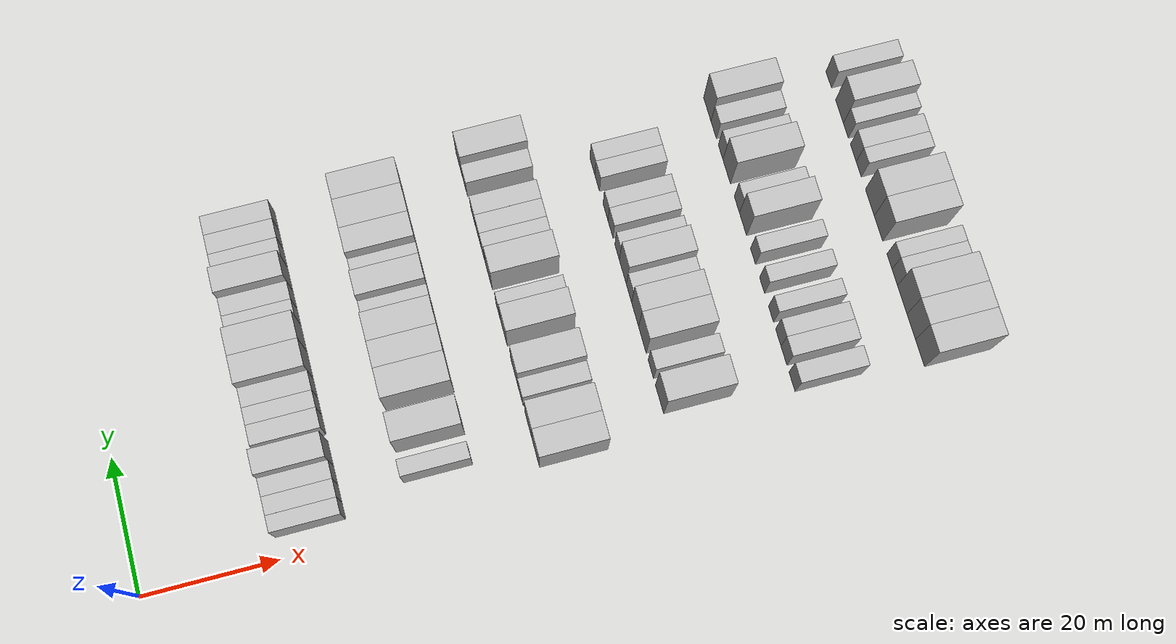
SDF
<sdf version="1.6">
 <world name="default">
  <model name="building_94">
   <static>1</static>
   <pose>25.0000 4.3334 0 0.000000 0.000000 0.000000</pose>
   <link name="link">
    <pose>0 0 3.00 0 0 0</pose>
    <collision name="collision"><geometry><box><size>10.0000 2.4107 6.0000</size></box></geometry></collision>
    <visual name="visual">
     <cast_shadows>0</cast_shadows>
     <geometry><box><size>10.0000 2.4107 6.0000</size></box></geometry>
     <material>
      <script>
       <uri>model://HANNAS_wall/materials/scripts</uri>
       <uri>model://HANNAS_wall/materials/textures</uri>
       <name>vrc/HANNAS_wall</name>
      </script>
     </material>
    </visual>
   </link>
  </model>
  <model name="building_95">
   <static>1</static>
   <pose>25.0000 6.8587 0 0.000000 0.000000 0.000000</pose>
   <link name="link">
    <pose>0 0 3.00 0 0 0</pose>
    <collision name="collision"><geometry><box><size>10.0000 2.6398 6.0000</size></box></geometry></collision>
    <visual name="visual">
     <cast_shadows>0</cast_shadows>
     <geometry><box><size>10.0000 2.6398 6.0000</size></box></geometry>
     <material>
      <script>
       <uri>model://HANNAS_wall/materials/scripts</uri>
       <uri>model://HANNAS_wall/materials/textures</uri>
       <name>vrc/HANNAS_wall</name>
      </script>
     </material>
    </visual>
   </link>
  </model>
  <model name="building_96">
   <static>1</static>
   <pose>25.0000 9.5032 0 0.000000 0.000000 0.000000</pose>
   <link name="link">
    <pose>0 0 3.00 0 0 0</pose>
    <collision name="collision"><geometry><box><size>10.0000 2.6491 6.0000</size></box></geometry></collision>
    <visual name="visual">
     <cast_shadows>0</cast_shadows>
     <geometry><box><size>10.0000 2.6491 6.0000</size></box></geometry>
     <material>
      <script>
       <uri>model://HANNAS_wall/materials/scripts</uri>
       <uri>model://HANNAS_wall/materials/textures</uri>
       <name>vrc/HANNAS_wall</name>
      </script>
     </material>
    </visual>
   </link>
  </model>
  <model name="building_97">
   <static>1</static>
   <pose>25.0000 12.6400 0 0.000000 0.000000 0.000000</pose>
   <link name="link">
    <pose>0 0 4.50 0 0 0</pose>
    <collision name="collision"><geometry><box><size>10.0000 3.6245 9.0000</size></box></geometry></collision>
    <visual name="visual">
     <cast_shadows>0</cast_shadows>
     <geometry><box><size>10.0000 3.6245 9.0000</size></box></geometry>
     <material>
      <script>
       <uri>model://HANNAS_wall/materials/scripts</uri>
       <uri>model://HANNAS_wall/materials/textures</uri>
       <name>vrc/HANNAS_wall</name>
      </script>
     </material>
    </visual>
   </link>
  </model>
  <model name="building_98">
   <static>1</static>
   <pose>25.0000 16.9301 0 0.000000 0.000000 0.000000</pose>
   <link name="link">
    <pose>0 0 3.00 0 0 0</pose>
    <collision name="collision"><geometry><box><size>10.0000 2.9557 6.0000</size></box></geometry></collision>
    <visual name="visual">
     <cast_shadows>0</cast_shadows>
     <geometry><box><size>10.0000 2.9557 6.0000</size></box></geometry>
     <material>
      <script>
       <uri>model://HANNAS_wall/materials/scripts</uri>
       <uri>model://HANNAS_wall/materials/textures</uri>
       <name>vrc/HANNAS_wall</name>
      </script>
     </material>
    </visual>
   </link>
  </model>
  <model name="building_99">
   <static>1</static>
   <pose>25.0000 19.6763 0 0.000000 0.000000 0.000000</pose>
   <link name="link">
    <pose>0 0 3.00 0 0 0</pose>
    <collision name="collision"><geometry><box><size>10.0000 2.5366 6.0000</size></box></geometry></collision>
    <visual name="visual">
     <cast_shadows>0</cast_shadows>
     <geometry><box><size>10.0000 2.5366 6.0000</size></box></geometry>
     <material>
      <script>
       <uri>model://HANNAS_wall/materials/scripts</uri>
       <uri>model://HANNAS_wall/materials/textures</uri>
       <name>vrc/HANNAS_wall</name>
      </script>
     </material>
    </visual>
   </link>
  </model>
  <model name="building_100">
   <static>1</static>
   <pose>25.0000 22.3847 0 0.000000 0.000000 0.000000</pose>
   <link name="link">
    <pose>0 0 3.00 0 0 0</pose>
    <collision name="collision"><geometry><box><size>10.0000 2.8801 6.0000</size></box></geometry></collision>
    <visual name="visual">
     <cast_shadows>0</cast_shadows>
     <geometry><box><size>10.0000 2.8801 6.0000</size></box></geometry>
     <material>
      <script>
       <uri>model://HANNAS_wall/materials/scripts</uri>
       <uri>model://HANNAS_wall/materials/textures</uri>
       <name>vrc/HANNAS_wall</name>
      </script>
     </material>
    </visual>
   </link>
  </model>
  <model name="building_101">
   <static>1</static>
   <pose>25.0000 25.8554 0 0.000000 0.000000 0.000000</pose>
   <link name="link">
    <pose>0 0 4.50 0 0 0</pose>
    <collision name="collision"><geometry><box><size>10.0000 4.0614 9.0000</size></box></geometry></collision>
    <visual name="visual">
     <cast_shadows>0</cast_shadows>
     <geometry><box><size>10.0000 4.0614 9.0000</size></box></geometry>
     <material>
      <script>
       <uri>model://HANNAS_wall/materials/scripts</uri>
       <uri>model://HANNAS_wall/materials/textures</uri>
       <name>vrc/HANNAS_wall</name>
      </script>
     </material>
    </visual>
   </link>
  </model>
  <model name="building_102">
   <static>1</static>
   <pose>25.0000 29.9325 0 0.000000 0.000000 0.000000</pose>
   <link name="link">
    <pose>0 0 4.50 0 0 0</pose>
    <collision name="collision"><geometry><box><size>10.0000 4.0927 9.0000</size></box></geometry></collision>
    <visual name="visual">
     <cast_shadows>0</cast_shadows>
     <geometry><box><size>10.0000 4.0927 9.0000</size></box></geometry>
     <material>
      <script>
       <uri>model://HANNAS_wall/materials/scripts</uri>
       <uri>model://HANNAS_wall/materials/textures</uri>
       <name>vrc/HANNAS_wall</name>
      </script>
     </material>
    </visual>
   </link>
  </model>
  <model name="building_103">
   <static>1</static>
   <pose>25.0000 33.2181 0 0.000000 0.000000 0.000000</pose>
   <link name="link">
    <pose>0 0 3.00 0 0 0</pose>
    <collision name="collision"><geometry><box><size>10.0000 2.4785 6.0000</size></box></geometry></collision>
    <visual name="visual">
     <cast_shadows>0</cast_shadows>
     <geometry><box><size>10.0000 2.4785 6.0000</size></box></geometry>
     <material>
      <script>
       <uri>model://HANNAS_wall/materials/scripts</uri>
       <uri>model://HANNAS_wall/materials/textures</uri>
       <name>vrc/HANNAS_wall</name>
      </script>
     </material>
    </visual>
   </link>
  </model>
  <model name="building_104">
   <static>1</static>
   <pose>25.0000 35.8272 0 0.000000 0.000000 0.000000</pose>
   <link name="link">
    <pose>0 0 3.00 0 0 0</pose>
    <collision name="collision"><geometry><box><size>10.0000 2.7397 6.0000</size></box></geometry></collision>
    <visual name="visual">
     <cast_shadows>0</cast_shadows>
     <geometry><box><size>10.0000 2.7397 6.0000</size></box></geometry>
     <material>
      <script>
       <uri>model://HANNAS_wall/materials/scripts</uri>
       <uri>model://HANNAS_wall/materials/textures</uri>
       <name>vrc/HANNAS_wall</name>
      </script>
     </material>
    </visual>
   </link>
  </model>
  <model name="building_105">
   <static>1</static>
   <pose>25.0000 39.0644 0 0.000000 0.000000 0.000000</pose>
   <link name="link">
    <pose>0 0 4.50 0 0 0</pose>
    <collision name="collision"><geometry><box><size>10.0000 3.7347 9.0000</size></box></geometry></collision>
    <visual name="visual">
     <cast_shadows>0</cast_shadows>
     <geometry><box><size>10.0000 3.7347 9.0000</size></box></geometry>
     <material>
      <script>
       <uri>model://HANNAS_wall/materials/scripts</uri>
       <uri>model://HANNAS_wall/materials/textures</uri>
       <name>vrc/HANNAS_wall</name>
      </script>
     </material>
    </visual>
   </link>
  </model>
  <model name="building_106">
   <static>1</static>
   <pose>25.0000 42.3756 0 0.000000 0.000000 0.000000</pose>
   <link name="link">
    <pose>0 0 3.00 0 0 0</pose>
    <collision name="collision"><geometry><box><size>10.0000 2.8877 6.0000</size></box></geometry></collision>
    <visual name="visual">
     <cast_shadows>0</cast_shadows>
     <geometry><box><size>10.0000 2.8877 6.0000</size></box></geometry>
     <material>
      <script>
       <uri>model://HANNAS_wall/materials/scripts</uri>
       <uri>model://HANNAS_wall/materials/textures</uri>
       <name>vrc/HANNAS_wall</name>
      </script>
     </material>
    </visual>
   </link>
  </model>
  <model name="building_107">
   <static>1</static>
   <pose>25.0000 45.2879 0 0.000000 0.000000 0.000000</pose>
   <link name="link">
    <pose>0 0 3.00 0 0 0</pose>
    <collision name="collision"><geometry><box><size>10.0000 2.9370 6.0000</size></box></geometry></collision>
    <visual name="visual">
     <cast_shadows>0</cast_shadows>
     <geometry><box><size>10.0000 2.9370 6.0000</size></box></geometry>
     <material>
      <script>
       <uri>model://HANNAS_wall/materials/scripts</uri>
       <uri>model://HANNAS_wall/materials/textures</uri>
       <name>vrc/HANNAS_wall</name>
      </script>
     </material>
    </visual>
   </link>
  </model>
  <model name="building_108">
   <static>1</static>
   <pose>25.0000 48.2164 0 0.000000 0.000000 0.000000</pose>
   <link name="link">
    <pose>0 0 3.00 0 0 0</pose>
    <collision name="collision"><geometry><box><size>10.0000 2.9199 6.0000</size></box></geometry></collision>
    <visual name="visual">
     <cast_shadows>0</cast_shadows>
     <geometry><box><size>10.0000 2.9199 6.0000</size></box></geometry>
     <material>
      <script>
       <uri>model://HANNAS_wall/materials/scripts</uri>
       <uri>model://HANNAS_wall/materials/textures</uri>
       <name>vrc/HANNAS_wall</name>
      </script>
     </material>
    </visual>
   </link>
  </model>
  <model name="building_274">
   <static>1</static>
   <pose>44.0000 7.2177 0 0.000000 0.000000 0.000000</pose>
   <link name="link">
    <pose>0 0 3.00 0 0 0</pose>
    <collision name="collision"><geometry><box><size>10.0000 2.4488 6.0000</size></box></geometry></collision>
    <visual name="visual">
     <cast_shadows>0</cast_shadows>
     <geometry><box><size>10.0000 2.4488 6.0000</size></box></geometry>
     <material>
      <script>
       <uri>model://HANNAS_wall/materials/scripts</uri>
       <uri>model://HANNAS_wall/materials/textures</uri>
       <name>vrc/HANNAS_wall</name>
      </script>
     </material>
    </visual>
   </link>
  </model>
  <model name="building_275">
   <static>1</static>
   <pose>44.0000 12.5557 0 0.000000 0.000000 0.000000</pose>
   <link name="link">
    <pose>0 0 4.50 0 0 0</pose>
    <collision name="collision"><geometry><box><size>10.0000 4.2271 9.0000</size></box></geometry></collision>
    <visual name="visual">
     <cast_shadows>0</cast_shadows>
     <geometry><box><size>10.0000 4.2271 9.0000</size></box></geometry>
     <material>
      <script>
       <uri>model://HANNAS_wall/materials/scripts</uri>
       <uri>model://HANNAS_wall/materials/textures</uri>
       <name>vrc/HANNAS_wall</name>
      </script>
     </material>
    </visual>
   </link>
  </model>
  <model name="building_276">
   <static>1</static>
   <pose>44.0000 18.8614 0 0.000000 0.000000 0.000000</pose>
   <link name="link">
    <pose>0 0 4.50 0 0 0</pose>
    <collision name="collision"><geometry><box><size>10.0000 4.3844 9.0000</size></box></geometry></collision>
    <visual name="visual">
     <cast_shadows>0</cast_shadows>
     <geometry><box><size>10.0000 4.3844 9.0000</size></box></geometry>
     <material>
      <script>
       <uri>model://HANNAS_wall/materials/scripts</uri>
       <uri>model://HANNAS_wall/materials/textures</uri>
       <name>vrc/HANNAS_wall</name>
      </script>
     </material>
    </visual>
   </link>
  </model>
  <model name="building_277">
   <static>1</static>
   <pose>44.0000 23.0179 0 0.000000 0.000000 0.000000</pose>
   <link name="link">
    <pose>0 0 4.50 0 0 0</pose>
    <collision name="collision"><geometry><box><size>10.0000 3.9285 9.0000</size></box></geometry></collision>
    <visual name="visual">
     <cast_shadows>0</cast_shadows>
     <geometry><box><size>10.0000 3.9285 9.0000</size></box></geometry>
     <material>
      <script>
       <uri>model://HANNAS_wall/materials/scripts</uri>
       <uri>model://HANNAS_wall/materials/textures</uri>
       <name>vrc/HANNAS_wall</name>
      </script>
     </material>
    </visual>
   </link>
  </model>
  <model name="building_278">
   <static>1</static>
   <pose>44.0000 27.0907 0 0.000000 0.000000 0.000000</pose>
   <link name="link">
    <pose>0 0 4.50 0 0 0</pose>
    <collision name="collision"><geometry><box><size>10.0000 4.2170 9.0000</size></box></geometry></collision>
    <visual name="visual">
     <cast_shadows>0</cast_shadows>
     <geometry><box><size>10.0000 4.2170 9.0000</size></box></geometry>
     <material>
      <script>
       <uri>model://HANNAS_wall/materials/scripts</uri>
       <uri>model://HANNAS_wall/materials/textures</uri>
       <name>vrc/HANNAS_wall</name>
      </script>
     </material>
    </visual>
   </link>
  </model>
  <model name="building_279">
   <static>1</static>
   <pose>44.0000 30.4544 0 0.000000 0.000000 0.000000</pose>
   <link name="link">
    <pose>0 0 3.00 0 0 0</pose>
    <collision name="collision"><geometry><box><size>10.0000 2.5103 6.0000</size></box></geometry></collision>
    <visual name="visual">
     <cast_shadows>0</cast_shadows>
     <geometry><box><size>10.0000 2.5103 6.0000</size></box></geometry>
     <material>
      <script>
       <uri>model://HANNAS_wall/materials/scripts</uri>
       <uri>model://HANNAS_wall/materials/textures</uri>
       <name>vrc/HANNAS_wall</name>
      </script>
     </material>
    </visual>
   </link>
  </model>
  <model name="building_280">
   <static>1</static>
   <pose>44.0000 33.5861 0 0.000000 0.000000 0.000000</pose>
   <link name="link">
    <pose>0 0 4.50 0 0 0</pose>
    <collision name="collision"><geometry><box><size>10.0000 3.7531 9.0000</size></box></geometry></collision>
    <visual name="visual">
     <cast_shadows>0</cast_shadows>
     <geometry><box><size>10.0000 3.7531 9.0000</size></box></geometry>
     <material>
      <script>
       <uri>model://HANNAS_wall/materials/scripts</uri>
       <uri>model://HANNAS_wall/materials/textures</uri>
       <name>vrc/HANNAS_wall</name>
      </script>
     </material>
    </visual>
   </link>
  </model>
  <model name="building_281">
   <static>1</static>
   <pose>44.0000 36.7830 0 0.000000 0.000000 0.000000</pose>
   <link name="link">
    <pose>0 0 3.00 0 0 0</pose>
    <collision name="collision"><geometry><box><size>10.0000 2.6407 6.0000</size></box></geometry></collision>
    <visual name="visual">
     <cast_shadows>0</cast_shadows>
     <geometry><box><size>10.0000 2.6407 6.0000</size></box></geometry>
     <material>
      <script>
       <uri>model://HANNAS_wall/materials/scripts</uri>
       <uri>model://HANNAS_wall/materials/textures</uri>
       <name>vrc/HANNAS_wall</name>
      </script>
     </material>
    </visual>
   </link>
  </model>
  <model name="building_282">
   <static>1</static>
   <pose>44.0000 39.9906 0 0.000000 0.000000 0.000000</pose>
   <link name="link">
    <pose>0 0 4.50 0 0 0</pose>
    <collision name="collision"><geometry><box><size>10.0000 3.7746 9.0000</size></box></geometry></collision>
    <visual name="visual">
     <cast_shadows>0</cast_shadows>
     <geometry><box><size>10.0000 3.7746 9.0000</size></box></geometry>
     <material>
      <script>
       <uri>model://HANNAS_wall/materials/scripts</uri>
       <uri>model://HANNAS_wall/materials/textures</uri>
       <name>vrc/HANNAS_wall</name>
      </script>
     </material>
    </visual>
   </link>
  </model>
  <model name="building_283">
   <static>1</static>
   <pose>44.0000 44.0481 0 0.000000 0.000000 0.000000</pose>
   <link name="link">
    <pose>0 0 4.50 0 0 0</pose>
    <collision name="collision"><geometry><box><size>10.0000 4.3403 9.0000</size></box></geometry></collision>
    <visual name="visual">
     <cast_shadows>0</cast_shadows>
     <geometry><box><size>10.0000 4.3403 9.0000</size></box></geometry>
     <material>
      <script>
       <uri>model://HANNAS_wall/materials/scripts</uri>
       <uri>model://HANNAS_wall/materials/textures</uri>
       <name>vrc/HANNAS_wall</name>
      </script>
     </material>
    </visual>
   </link>
  </model>
  <model name="building_284">
   <static>1</static>
   <pose>44.0000 48.2160 0 0.000000 0.000000 0.000000</pose>
   <link name="link">
    <pose>0 0 4.50 0 0 0</pose>
    <collision name="collision"><geometry><box><size>10.0000 3.9956 9.0000</size></box></geometry></collision>
    <visual name="visual">
     <cast_shadows>0</cast_shadows>
     <geometry><box><size>10.0000 3.9956 9.0000</size></box></geometry>
     <material>
      <script>
       <uri>model://HANNAS_wall/materials/scripts</uri>
       <uri>model://HANNAS_wall/materials/textures</uri>
       <name>vrc/HANNAS_wall</name>
      </script>
     </material>
    </visual>
   </link>
  </model>
  <model name="building_437">
   <static>1</static>
   <pose>63.0000 5.2274 0 0.000000 0.000000 0.000000</pose>
   <link name="link">
    <pose>0 0 4.50 0 0 0</pose>
    <collision name="collision"><geometry><box><size>10.0000 4.0675 9.0000</size></box></geometry></collision>
    <visual name="visual">
     <cast_shadows>0</cast_shadows>
     <geometry><box><size>10.0000 4.0675 9.0000</size></box></geometry>
     <material>
      <script>
       <uri>model://HANNAS_wall/materials/scripts</uri>
       <uri>model://HANNAS_wall/materials/textures</uri>
       <name>vrc/HANNAS_wall</name>
      </script>
     </material>
    </visual>
   </link>
  </model>
  <model name="building_438">
   <static>1</static>
   <pose>63.0000 9.2887 0 0.000000 0.000000 0.000000</pose>
   <link name="link">
    <pose>0 0 4.50 0 0 0</pose>
    <collision name="collision"><geometry><box><size>10.0000 4.0551 9.0000</size></box></geometry></collision>
    <visual name="visual">
     <cast_shadows>0</cast_shadows>
     <geometry><box><size>10.0000 4.0551 9.0000</size></box></geometry>
     <material>
      <script>
       <uri>model://HANNAS_wall/materials/scripts</uri>
       <uri>model://HANNAS_wall/materials/textures</uri>
       <name>vrc/HANNAS_wall</name>
      </script>
     </material>
    </visual>
   </link>
  </model>
  <model name="building_439">
   <static>1</static>
   <pose>63.0000 13.7377 0 0.000000 0.000000 0.000000</pose>
   <link name="link">
    <pose>0 0 3.00 0 0 0</pose>
    <collision name="collision"><geometry><box><size>10.0000 2.8430 6.0000</size></box></geometry></collision>
    <visual name="visual">
     <cast_shadows>0</cast_shadows>
     <geometry><box><size>10.0000 2.8430 6.0000</size></box></geometry>
     <material>
      <script>
       <uri>model://HANNAS_wall/materials/scripts</uri>
       <uri>model://HANNAS_wall/materials/textures</uri>
       <name>vrc/HANNAS_wall</name>
      </script>
     </material>
    </visual>
   </link>
  </model>
  <model name="building_440">
   <static>1</static>
   <pose>63.0000 17.2520 0 0.000000 0.000000 0.000000</pose>
   <link name="link">
    <pose>0 0 4.50 0 0 0</pose>
    <collision name="collision"><geometry><box><size>10.0000 4.1856 9.0000</size></box></geometry></collision>
    <visual name="visual">
     <cast_shadows>0</cast_shadows>
     <geometry><box><size>10.0000 4.1856 9.0000</size></box></geometry>
     <material>
      <script>
       <uri>model://HANNAS_wall/materials/scripts</uri>
       <uri>model://HANNAS_wall/materials/textures</uri>
       <name>vrc/HANNAS_wall</name>
      </script>
     </material>
    </visual>
   </link>
  </model>
  <model name="building_441">
   <static>1</static>
   <pose>63.0000 23.3477 0 0.000000 0.000000 0.000000</pose>
   <link name="link">
    <pose>0 0 4.50 0 0 0</pose>
    <collision name="collision"><geometry><box><size>10.0000 4.0058 9.0000</size></box></geometry></collision>
    <visual name="visual">
     <cast_shadows>0</cast_shadows>
     <geometry><box><size>10.0000 4.0058 9.0000</size></box></geometry>
     <material>
      <script>
       <uri>model://HANNAS_wall/materials/scripts</uri>
       <uri>model://HANNAS_wall/materials/textures</uri>
       <name>vrc/HANNAS_wall</name>
      </script>
     </material>
    </visual>
   </link>
  </model>
  <model name="building_442">
   <static>1</static>
   <pose>63.0000 26.6752 0 0.000000 0.000000 0.000000</pose>
   <link name="link">
    <pose>0 0 3.00 0 0 0</pose>
    <collision name="collision"><geometry><box><size>10.0000 2.6492 6.0000</size></box></geometry></collision>
    <visual name="visual">
     <cast_shadows>0</cast_shadows>
     <geometry><box><size>10.0000 2.6492 6.0000</size></box></geometry>
     <material>
      <script>
       <uri>model://HANNAS_wall/materials/scripts</uri>
       <uri>model://HANNAS_wall/materials/textures</uri>
       <name>vrc/HANNAS_wall</name>
      </script>
     </material>
    </visual>
   </link>
  </model>
  <model name="building_443">
   <static>1</static>
   <pose>63.0000 31.9943 0 0.000000 0.000000 0.000000</pose>
   <link name="link">
    <pose>0 0 4.50 0 0 0</pose>
    <collision name="collision"><geometry><box><size>10.0000 3.9889 9.0000</size></box></geometry></collision>
    <visual name="visual">
     <cast_shadows>0</cast_shadows>
     <geometry><box><size>10.0000 3.9889 9.0000</size></box></geometry>
     <material>
      <script>
       <uri>model://HANNAS_wall/materials/scripts</uri>
       <uri>model://HANNAS_wall/materials/textures</uri>
       <name>vrc/HANNAS_wall</name>
      </script>
     </material>
    </visual>
   </link>
  </model>
  <model name="building_444">
   <static>1</static>
   <pose>63.0000 35.4839 0 0.000000 0.000000 0.000000</pose>
   <link name="link">
    <pose>0 0 3.00 0 0 0</pose>
    <collision name="collision"><geometry><box><size>10.0000 2.9904 6.0000</size></box></geometry></collision>
    <visual name="visual">
     <cast_shadows>0</cast_shadows>
     <geometry><box><size>10.0000 2.9904 6.0000</size></box></geometry>
     <material>
      <script>
       <uri>model://HANNAS_wall/materials/scripts</uri>
       <uri>model://HANNAS_wall/materials/textures</uri>
       <name>vrc/HANNAS_wall</name>
      </script>
     </material>
    </visual>
   </link>
  </model>
  <model name="building_445">
   <static>1</static>
   <pose>63.0000 38.3937 0 0.000000 0.000000 0.000000</pose>
   <link name="link">
    <pose>0 0 3.00 0 0 0</pose>
    <collision name="collision"><geometry><box><size>10.0000 2.8292 6.0000</size></box></geometry></collision>
    <visual name="visual">
     <cast_shadows>0</cast_shadows>
     <geometry><box><size>10.0000 2.8292 6.0000</size></box></geometry>
     <material>
      <script>
       <uri>model://HANNAS_wall/materials/scripts</uri>
       <uri>model://HANNAS_wall/materials/textures</uri>
       <name>vrc/HANNAS_wall</name>
      </script>
     </material>
    </visual>
   </link>
  </model>
  <model name="building_446">
   <static>1</static>
   <pose>63.0000 41.2841 0 0.000000 0.000000 0.000000</pose>
   <link name="link">
    <pose>0 0 3.00 0 0 0</pose>
    <collision name="collision"><geometry><box><size>10.0000 2.9515 6.0000</size></box></geometry></collision>
    <visual name="visual">
     <cast_shadows>0</cast_shadows>
     <geometry><box><size>10.0000 2.9515 6.0000</size></box></geometry>
     <material>
      <script>
       <uri>model://HANNAS_wall/materials/scripts</uri>
       <uri>model://HANNAS_wall/materials/textures</uri>
       <name>vrc/HANNAS_wall</name>
      </script>
     </material>
    </visual>
   </link>
  </model>
  <model name="building_447">
   <static>1</static>
   <pose>63.0000 46.2151 0 0.000000 0.000000 0.000000</pose>
   <link name="link">
    <pose>0 0 3.00 0 0 0</pose>
    <collision name="collision"><geometry><box><size>10.0000 2.9103 6.0000</size></box></geometry></collision>
    <visual name="visual">
     <cast_shadows>0</cast_shadows>
     <geometry><box><size>10.0000 2.9103 6.0000</size></box></geometry>
     <material>
      <script>
       <uri>model://HANNAS_wall/materials/scripts</uri>
       <uri>model://HANNAS_wall/materials/textures</uri>
       <name>vrc/HANNAS_wall</name>
      </script>
     </material>
    </visual>
   </link>
  </model>
  <model name="building_448">
   <static>1</static>
   <pose>63.0000 49.6819 0 0.000000 0.000000 0.000000</pose>
   <link name="link">
    <pose>0 0 4.50 0 0 0</pose>
    <collision name="collision"><geometry><box><size>10.0000 4.0234 9.0000</size></box></geometry></collision>
    <visual name="visual">
     <cast_shadows>0</cast_shadows>
     <geometry><box><size>10.0000 4.0234 9.0000</size></box></geometry>
     <material>
      <script>
       <uri>model://HANNAS_wall/materials/scripts</uri>
       <uri>model://HANNAS_wall/materials/textures</uri>
       <name>vrc/HANNAS_wall</name>
      </script>
     </material>
    </visual>
   </link>
  </model>
  <model name="building_608">
   <static>1</static>
   <pose>82.0000 8.2202 0 0.000000 0.000000 0.000000</pose>
   <link name="link">
    <pose>0 0 4.50 0 0 0</pose>
    <collision name="collision"><geometry><box><size>10.0000 4.2672 9.0000</size></box></geometry></collision>
    <visual name="visual">
     <cast_shadows>0</cast_shadows>
     <geometry><box><size>10.0000 4.2672 9.0000</size></box></geometry>
     <material>
      <script>
       <uri>model://HANNAS_wall/materials/scripts</uri>
       <uri>model://HANNAS_wall/materials/textures</uri>
       <name>vrc/HANNAS_wall</name>
      </script>
     </material>
    </visual>
   </link>
  </model>
  <model name="building_609">
   <static>1</static>
   <pose>82.0000 12.7709 0 0.000000 0.000000 0.000000</pose>
   <link name="link">
    <pose>0 0 3.00 0 0 0</pose>
    <collision name="collision"><geometry><box><size>10.0000 2.8343 6.0000</size></box></geometry></collision>
    <visual name="visual">
     <cast_shadows>0</cast_shadows>
     <geometry><box><size>10.0000 2.8343 6.0000</size></box></geometry>
     <material>
      <script>
       <uri>model://HANNAS_wall/materials/scripts</uri>
       <uri>model://HANNAS_wall/materials/textures</uri>
       <name>vrc/HANNAS_wall</name>
      </script>
     </material>
    </visual>
   </link>
  </model>
  <model name="building_610">
   <static>1</static>
   <pose>82.0000 17.2074 0 0.000000 0.000000 0.000000</pose>
   <link name="link">
    <pose>0 0 4.50 0 0 0</pose>
    <collision name="collision"><geometry><box><size>10.0000 4.0388 9.0000</size></box></geometry></collision>
    <visual name="visual">
     <cast_shadows>0</cast_shadows>
     <geometry><box><size>10.0000 4.0388 9.0000</size></box></geometry>
     <material>
      <script>
       <uri>model://HANNAS_wall/materials/scripts</uri>
       <uri>model://HANNAS_wall/materials/textures</uri>
       <name>vrc/HANNAS_wall</name>
      </script>
     </material>
    </visual>
   </link>
  </model>
  <model name="building_611">
   <static>1</static>
   <pose>82.0000 21.0858 0 0.000000 0.000000 0.000000</pose>
   <link name="link">
    <pose>0 0 4.50 0 0 0</pose>
    <collision name="collision"><geometry><box><size>10.0000 3.7180 9.0000</size></box></geometry></collision>
    <visual name="visual">
     <cast_shadows>0</cast_shadows>
     <geometry><box><size>10.0000 3.7180 9.0000</size></box></geometry>
     <material>
      <script>
       <uri>model://HANNAS_wall/materials/scripts</uri>
       <uri>model://HANNAS_wall/materials/textures</uri>
       <name>vrc/HANNAS_wall</name>
      </script>
     </material>
    </visual>
   </link>
  </model>
  <model name="building_612">
   <static>1</static>
   <pose>82.0000 24.3654 0 0.000000 0.000000 0.000000</pose>
   <link name="link">
    <pose>0 0 3.00 0 0 0</pose>
    <collision name="collision"><geometry><box><size>10.0000 2.8411 6.0000</size></box></geometry></collision>
    <visual name="visual">
     <cast_shadows>0</cast_shadows>
     <geometry><box><size>10.0000 2.8411 6.0000</size></box></geometry>
     <material>
      <script>
       <uri>model://HANNAS_wall/materials/scripts</uri>
       <uri>model://HANNAS_wall/materials/textures</uri>
       <name>vrc/HANNAS_wall</name>
      </script>
     </material>
    </visual>
   </link>
  </model>
  <model name="building_613">
   <static>1</static>
   <pose>82.0000 27.7019 0 0.000000 0.000000 0.000000</pose>
   <link name="link">
    <pose>0 0 4.50 0 0 0</pose>
    <collision name="collision"><geometry><box><size>10.0000 3.8319 9.0000</size></box></geometry></collision>
    <visual name="visual">
     <cast_shadows>0</cast_shadows>
     <geometry><box><size>10.0000 3.8319 9.0000</size></box></geometry>
     <material>
      <script>
       <uri>model://HANNAS_wall/materials/scripts</uri>
       <uri>model://HANNAS_wall/materials/textures</uri>
       <name>vrc/HANNAS_wall</name>
      </script>
     </material>
    </visual>
   </link>
  </model>
  <model name="building_614">
   <static>1</static>
   <pose>82.0000 30.8458 0 0.000000 0.000000 0.000000</pose>
   <link name="link">
    <pose>0 0 3.00 0 0 0</pose>
    <collision name="collision"><geometry><box><size>10.0000 2.4558 6.0000</size></box></geometry></collision>
    <visual name="visual">
     <cast_shadows>0</cast_shadows>
     <geometry><box><size>10.0000 2.4558 6.0000</size></box></geometry>
     <material>
      <script>
       <uri>model://HANNAS_wall/materials/scripts</uri>
       <uri>model://HANNAS_wall/materials/textures</uri>
       <name>vrc/HANNAS_wall</name>
      </script>
     </material>
    </visual>
   </link>
  </model>
  <model name="building_615">
   <static>1</static>
   <pose>82.0000 34.4675 0 0.000000 0.000000 0.000000</pose>
   <link name="link">
    <pose>0 0 3.00 0 0 0</pose>
    <collision name="collision"><geometry><box><size>10.0000 2.7876 6.0000</size></box></geometry></collision>
    <visual name="visual">
     <cast_shadows>0</cast_shadows>
     <geometry><box><size>10.0000 2.7876 6.0000</size></box></geometry>
     <material>
      <script>
       <uri>model://HANNAS_wall/materials/scripts</uri>
       <uri>model://HANNAS_wall/materials/textures</uri>
       <name>vrc/HANNAS_wall</name>
      </script>
     </material>
    </visual>
   </link>
  </model>
  <model name="building_616">
   <static>1</static>
   <pose>82.0000 37.1994 0 0.000000 0.000000 0.000000</pose>
   <link name="link">
    <pose>0 0 3.00 0 0 0</pose>
    <collision name="collision"><geometry><box><size>10.0000 2.6762 6.0000</size></box></geometry></collision>
    <visual name="visual">
     <cast_shadows>0</cast_shadows>
     <geometry><box><size>10.0000 2.6762 6.0000</size></box></geometry>
     <material>
      <script>
       <uri>model://HANNAS_wall/materials/scripts</uri>
       <uri>model://HANNAS_wall/materials/textures</uri>
       <name>vrc/HANNAS_wall</name>
      </script>
     </material>
    </visual>
   </link>
  </model>
  <model name="building_617">
   <static>1</static>
   <pose>82.0000 41.8580 0 0.000000 0.000000 0.000000</pose>
   <link name="link">
    <pose>0 0 3.00 0 0 0</pose>
    <collision name="collision"><geometry><box><size>10.0000 2.6410 6.0000</size></box></geometry></collision>
    <visual name="visual">
     <cast_shadows>0</cast_shadows>
     <geometry><box><size>10.0000 2.6410 6.0000</size></box></geometry>
     <material>
      <script>
       <uri>model://HANNAS_wall/materials/scripts</uri>
       <uri>model://HANNAS_wall/materials/textures</uri>
       <name>vrc/HANNAS_wall</name>
      </script>
     </material>
    </visual>
   </link>
  </model>
  <model name="building_618">
   <static>1</static>
   <pose>82.0000 44.5464 0 0.000000 0.000000 0.000000</pose>
   <link name="link">
    <pose>0 0 3.00 0 0 0</pose>
    <collision name="collision"><geometry><box><size>10.0000 2.7358 6.0000</size></box></geometry></collision>
    <visual name="visual">
     <cast_shadows>0</cast_shadows>
     <geometry><box><size>10.0000 2.7358 6.0000</size></box></geometry>
     <material>
      <script>
       <uri>model://HANNAS_wall/materials/scripts</uri>
       <uri>model://HANNAS_wall/materials/textures</uri>
       <name>vrc/HANNAS_wall</name>
      </script>
     </material>
    </visual>
   </link>
  </model>
  <model name="building_783">
   <static>1</static>
   <pose>101.0000 5.8232 0 0.000000 0.000000 0.000000</pose>
   <link name="link">
    <pose>0 0 3.00 0 0 0</pose>
    <collision name="collision"><geometry><box><size>10.0000 2.9668 6.0000</size></box></geometry></collision>
    <visual name="visual">
     <cast_shadows>0</cast_shadows>
     <geometry><box><size>10.0000 2.9668 6.0000</size></box></geometry>
     <material>
      <script>
       <uri>model://HANNAS_wall/materials/scripts</uri>
       <uri>model://HANNAS_wall/materials/textures</uri>
       <name>vrc/HANNAS_wall</name>
      </script>
     </material>
    </visual>
   </link>
  </model>
  <model name="building_784">
   <static>1</static>
   <pose>101.0000 9.7664 0 0.000000 0.000000 0.000000</pose>
   <link name="link">
    <pose>0 0 3.00 0 0 0</pose>
    <collision name="collision"><geometry><box><size>10.0000 2.9196 6.0000</size></box></geometry></collision>
    <visual name="visual">
     <cast_shadows>0</cast_shadows>
     <geometry><box><size>10.0000 2.9196 6.0000</size></box></geometry>
     <material>
      <script>
       <uri>model://HANNAS_wall/materials/scripts</uri>
       <uri>model://HANNAS_wall/materials/textures</uri>
       <name>vrc/HANNAS_wall</name>
      </script>
     </material>
    </visual>
   </link>
  </model>
  <model name="building_785">
   <static>1</static>
   <pose>101.0000 12.5554 0 0.000000 0.000000 0.000000</pose>
   <link name="link">
    <pose>0 0 3.00 0 0 0</pose>
    <collision name="collision"><geometry><box><size>10.0000 2.6585 6.0000</size></box></geometry></collision>
    <visual name="visual">
     <cast_shadows>0</cast_shadows>
     <geometry><box><size>10.0000 2.6585 6.0000</size></box></geometry>
     <material>
      <script>
       <uri>model://HANNAS_wall/materials/scripts</uri>
       <uri>model://HANNAS_wall/materials/textures</uri>
       <name>vrc/HANNAS_wall</name>
      </script>
     </material>
    </visual>
   </link>
  </model>
  <model name="building_786">
   <static>1</static>
   <pose>101.0000 16.1260 0 0.000000 0.000000 0.000000</pose>
   <link name="link">
    <pose>0 0 3.00 0 0 0</pose>
    <collision name="collision"><geometry><box><size>10.0000 2.4826 6.0000</size></box></geometry></collision>
    <visual name="visual">
     <cast_shadows>0</cast_shadows>
     <geometry><box><size>10.0000 2.4826 6.0000</size></box></geometry>
     <material>
      <script>
       <uri>model://HANNAS_wall/materials/scripts</uri>
       <uri>model://HANNAS_wall/materials/textures</uri>
       <name>vrc/HANNAS_wall</name>
      </script>
     </material>
    </visual>
   </link>
  </model>
  <model name="building_787">
   <static>1</static>
   <pose>101.0000 20.6172 0 0.000000 0.000000 0.000000</pose>
   <link name="link">
    <pose>0 0 3.00 0 0 0</pose>
    <collision name="collision"><geometry><box><size>10.0000 2.5000 6.0000</size></box></geometry></collision>
    <visual name="visual">
     <cast_shadows>0</cast_shadows>
     <geometry><box><size>10.0000 2.5000 6.0000</size></box></geometry>
     <material>
      <script>
       <uri>model://HANNAS_wall/materials/scripts</uri>
       <uri>model://HANNAS_wall/materials/textures</uri>
       <name>vrc/HANNAS_wall</name>
      </script>
     </material>
    </visual>
   </link>
  </model>
  <model name="building_788">
   <static>1</static>
   <pose>101.0000 25.1439 0 0.000000 0.000000 0.000000</pose>
   <link name="link">
    <pose>0 0 3.00 0 0 0</pose>
    <collision name="collision"><geometry><box><size>10.0000 2.5534 6.0000</size></box></geometry></collision>
    <visual name="visual">
     <cast_shadows>0</cast_shadows>
     <geometry><box><size>10.0000 2.5534 6.0000</size></box></geometry>
     <material>
      <script>
       <uri>model://HANNAS_wall/materials/scripts</uri>
       <uri>model://HANNAS_wall/materials/textures</uri>
       <name>vrc/HANNAS_wall</name>
      </script>
     </material>
    </visual>
   </link>
  </model>
  <model name="building_789">
   <static>1</static>
   <pose>101.0000 30.2254 0 0.000000 0.000000 0.000000</pose>
   <link name="link">
    <pose>0 0 4.50 0 0 0</pose>
    <collision name="collision"><geometry><box><size>10.0000 3.6097 9.0000</size></box></geometry></collision>
    <visual name="visual">
     <cast_shadows>0</cast_shadows>
     <geometry><box><size>10.0000 3.6097 9.0000</size></box></geometry>
     <material>
      <script>
       <uri>model://HANNAS_wall/materials/scripts</uri>
       <uri>model://HANNAS_wall/materials/textures</uri>
       <name>vrc/HANNAS_wall</name>
      </script>
     </material>
    </visual>
   </link>
  </model>
  <model name="building_790">
   <static>1</static>
   <pose>101.0000 33.3664 0 0.000000 0.000000 0.000000</pose>
   <link name="link">
    <pose>0 0 3.00 0 0 0</pose>
    <collision name="collision"><geometry><box><size>10.0000 2.6723 6.0000</size></box></geometry></collision>
    <visual name="visual">
     <cast_shadows>0</cast_shadows>
     <geometry><box><size>10.0000 2.6723 6.0000</size></box></geometry>
     <material>
      <script>
       <uri>model://HANNAS_wall/materials/scripts</uri>
       <uri>model://HANNAS_wall/materials/textures</uri>
       <name>vrc/HANNAS_wall</name>
      </script>
     </material>
    </visual>
   </link>
  </model>
  <model name="building_791">
   <static>1</static>
   <pose>101.0000 38.6586 0 0.000000 0.000000 0.000000</pose>
   <link name="link">
    <pose>0 0 4.50 0 0 0</pose>
    <collision name="collision"><geometry><box><size>10.0000 3.9119 9.0000</size></box></geometry></collision>
    <visual name="visual">
     <cast_shadows>0</cast_shadows>
     <geometry><box><size>10.0000 3.9119 9.0000</size></box></geometry>
     <material>
      <script>
       <uri>model://HANNAS_wall/materials/scripts</uri>
       <uri>model://HANNAS_wall/materials/textures</uri>
       <name>vrc/HANNAS_wall</name>
      </script>
     </material>
    </visual>
   </link>
  </model>
  <model name="building_792">
   <static>1</static>
   <pose>101.0000 41.8192 0 0.000000 0.000000 0.000000</pose>
   <link name="link">
    <pose>0 0 3.00 0 0 0</pose>
    <collision name="collision"><geometry><box><size>10.0000 2.4093 6.0000</size></box></geometry></collision>
    <visual name="visual">
     <cast_shadows>0</cast_shadows>
     <geometry><box><size>10.0000 2.4093 6.0000</size></box></geometry>
     <material>
      <script>
       <uri>model://HANNAS_wall/materials/scripts</uri>
       <uri>model://HANNAS_wall/materials/textures</uri>
       <name>vrc/HANNAS_wall</name>
      </script>
     </material>
    </visual>
   </link>
  </model>
  <model name="building_793">
   <static>1</static>
   <pose>101.0000 45.4603 0 0.000000 0.000000 0.000000</pose>
   <link name="link">
    <pose>0 0 3.00 0 0 0</pose>
    <collision name="collision"><geometry><box><size>10.0000 2.8728 6.0000</size></box></geometry></collision>
    <visual name="visual">
     <cast_shadows>0</cast_shadows>
     <geometry><box><size>10.0000 2.8728 6.0000</size></box></geometry>
     <material>
      <script>
       <uri>model://HANNAS_wall/materials/scripts</uri>
       <uri>model://HANNAS_wall/materials/textures</uri>
       <name>vrc/HANNAS_wall</name>
      </script>
     </material>
    </visual>
   </link>
  </model>
  <model name="building_794">
   <static>1</static>
   <pose>101.0000 48.8554 0 0.000000 0.000000 0.000000</pose>
   <link name="link">
    <pose>0 0 4.50 0 0 0</pose>
    <collision name="collision"><geometry><box><size>10.0000 3.9174 9.0000</size></box></geometry></collision>
    <visual name="visual">
     <cast_shadows>0</cast_shadows>
     <geometry><box><size>10.0000 3.9174 9.0000</size></box></geometry>
     <material>
      <script>
       <uri>model://HANNAS_wall/materials/scripts</uri>
       <uri>model://HANNAS_wall/materials/textures</uri>
       <name>vrc/HANNAS_wall</name>
      </script>
     </material>
    </visual>
   </link>
  </model>
  <model name="building_938">
   <static>1</static>
   <pose>120.0000 5.1156 0 0.000000 0.000000 0.000000</pose>
   <link name="link">
    <pose>0 0 4.50 0 0 0</pose>
    <collision name="collision"><geometry><box><size>10.0000 4.1260 9.0000</size></box></geometry></collision>
    <visual name="visual">
     <cast_shadows>0</cast_shadows>
     <geometry><box><size>10.0000 4.1260 9.0000</size></box></geometry>
     <material>
      <script>
       <uri>model://HANNAS_wall/materials/scripts</uri>
       <uri>model://HANNAS_wall/materials/textures</uri>
       <name>vrc/HANNAS_wall</name>
      </script>
     </material>
    </visual>
   </link>
  </model>
  <model name="building_939">
   <static>1</static>
   <pose>120.0000 9.1423 0 0.000000 0.000000 0.000000</pose>
   <link name="link">
    <pose>0 0 4.50 0 0 0</pose>
    <collision name="collision"><geometry><box><size>10.0000 3.9275 9.0000</size></box></geometry></collision>
    <visual name="visual">
     <cast_shadows>0</cast_shadows>
     <geometry><box><size>10.0000 3.9275 9.0000</size></box></geometry>
     <material>
      <script>
       <uri>model://HANNAS_wall/materials/scripts</uri>
       <uri>model://HANNAS_wall/materials/textures</uri>
       <name>vrc/HANNAS_wall</name>
      </script>
     </material>
    </visual>
   </link>
  </model>
  <model name="building_940">
   <static>1</static>
   <pose>120.0000 13.3113 0 0.000000 0.000000 0.000000</pose>
   <link name="link">
    <pose>0 0 4.50 0 0 0</pose>
    <collision name="collision"><geometry><box><size>10.0000 4.4104 9.0000</size></box></geometry></collision>
    <visual name="visual">
     <cast_shadows>0</cast_shadows>
     <geometry><box><size>10.0000 4.4104 9.0000</size></box></geometry>
     <material>
      <script>
       <uri>model://HANNAS_wall/materials/scripts</uri>
       <uri>model://HANNAS_wall/materials/textures</uri>
       <name>vrc/HANNAS_wall</name>
      </script>
     </material>
    </visual>
   </link>
  </model>
  <model name="building_941">
   <static>1</static>
   <pose>120.0000 16.7917 0 0.000000 0.000000 0.000000</pose>
   <link name="link">
    <pose>0 0 3.00 0 0 0</pose>
    <collision name="collision"><geometry><box><size>10.0000 2.5505 6.0000</size></box></geometry></collision>
    <visual name="visual">
     <cast_shadows>0</cast_shadows>
     <geometry><box><size>10.0000 2.5505 6.0000</size></box></geometry>
     <material>
      <script>
       <uri>model://HANNAS_wall/materials/scripts</uri>
       <uri>model://HANNAS_wall/materials/textures</uri>
       <name>vrc/HANNAS_wall</name>
      </script>
     </material>
    </visual>
   </link>
  </model>
  <model name="building_942">
   <static>1</static>
   <pose>120.0000 19.2729 0 0.000000 0.000000 0.000000</pose>
   <link name="link">
    <pose>0 0 3.00 0 0 0</pose>
    <collision name="collision"><geometry><box><size>10.0000 2.4119 6.0000</size></box></geometry></collision>
    <visual name="visual">
     <cast_shadows>0</cast_shadows>
     <geometry><box><size>10.0000 2.4119 6.0000</size></box></geometry>
     <material>
      <script>
       <uri>model://HANNAS_wall/materials/scripts</uri>
       <uri>model://HANNAS_wall/materials/textures</uri>
       <name>vrc/HANNAS_wall</name>
      </script>
     </material>
    </visual>
   </link>
  </model>
  <model name="building_943">
   <static>1</static>
   <pose>120.0000 24.4829 0 0.000000 0.000000 0.000000</pose>
   <link name="link">
    <pose>0 0 4.50 0 0 0</pose>
    <collision name="collision"><geometry><box><size>10.0000 4.0081 9.0000</size></box></geometry></collision>
    <visual name="visual">
     <cast_shadows>0</cast_shadows>
     <geometry><box><size>10.0000 4.0081 9.0000</size></box></geometry>
     <material>
      <script>
       <uri>model://HANNAS_wall/materials/scripts</uri>
       <uri>model://HANNAS_wall/materials/textures</uri>
       <name>vrc/HANNAS_wall</name>
      </script>
     </material>
    </visual>
   </link>
  </model>
  <model name="building_944">
   <static>1</static>
   <pose>120.0000 28.6184 0 0.000000 0.000000 0.000000</pose>
   <link name="link">
    <pose>0 0 4.50 0 0 0</pose>
    <collision name="collision"><geometry><box><size>10.0000 4.2630 9.0000</size></box></geometry></collision>
    <visual name="visual">
     <cast_shadows>0</cast_shadows>
     <geometry><box><size>10.0000 4.2630 9.0000</size></box></geometry>
     <material>
      <script>
       <uri>model://HANNAS_wall/materials/scripts</uri>
       <uri>model://HANNAS_wall/materials/textures</uri>
       <name>vrc/HANNAS_wall</name>
      </script>
     </material>
    </visual>
   </link>
  </model>
  <model name="building_945">
   <static>1</static>
   <pose>120.0000 33.9677 0 0.000000 0.000000 0.000000</pose>
   <link name="link">
    <pose>0 0 3.00 0 0 0</pose>
    <collision name="collision"><geometry><box><size>10.0000 2.4355 6.0000</size></box></geometry></collision>
    <visual name="visual">
     <cast_shadows>0</cast_shadows>
     <geometry><box><size>10.0000 2.4355 6.0000</size></box></geometry>
     <material>
      <script>
       <uri>model://HANNAS_wall/materials/scripts</uri>
       <uri>model://HANNAS_wall/materials/textures</uri>
       <name>vrc/HANNAS_wall</name>
      </script>
     </material>
    </visual>
   </link>
  </model>
  <model name="building_946">
   <static>1</static>
   <pose>120.0000 36.6143 0 0.000000 0.000000 0.000000</pose>
   <link name="link">
    <pose>0 0 3.00 0 0 0</pose>
    <collision name="collision"><geometry><box><size>10.0000 2.8578 6.0000</size></box></geometry></collision>
    <visual name="visual">
     <cast_shadows>0</cast_shadows>
     <geometry><box><size>10.0000 2.8578 6.0000</size></box></geometry>
     <material>
      <script>
       <uri>model://HANNAS_wall/materials/scripts</uri>
       <uri>model://HANNAS_wall/materials/textures</uri>
       <name>vrc/HANNAS_wall</name>
      </script>
     </material>
    </visual>
   </link>
  </model>
  <model name="building_947">
   <static>1</static>
   <pose>120.0000 40.2650 0 0.000000 0.000000 0.000000</pose>
   <link name="link">
    <pose>0 0 3.00 0 0 0</pose>
    <collision name="collision"><geometry><box><size>10.0000 2.4435 6.0000</size></box></geometry></collision>
    <visual name="visual">
     <cast_shadows>0</cast_shadows>
     <geometry><box><size>10.0000 2.4435 6.0000</size></box></geometry>
     <material>
      <script>
       <uri>model://HANNAS_wall/materials/scripts</uri>
       <uri>model://HANNAS_wall/materials/textures</uri>
       <name>vrc/HANNAS_wall</name>
      </script>
     </material>
    </visual>
   </link>
  </model>
  <model name="building_948">
   <static>1</static>
   <pose>120.0000 43.4179 0 0.000000 0.000000 0.000000</pose>
   <link name="link">
    <pose>0 0 4.50 0 0 0</pose>
    <collision name="collision"><geometry><box><size>10.0000 3.8624 9.0000</size></box></geometry></collision>
    <visual name="visual">
     <cast_shadows>0</cast_shadows>
     <geometry><box><size>10.0000 3.8624 9.0000</size></box></geometry>
     <material>
      <script>
       <uri>model://HANNAS_wall/materials/scripts</uri>
       <uri>model://HANNAS_wall/materials/textures</uri>
       <name>vrc/HANNAS_wall</name>
      </script>
     </material>
    </visual>
   </link>
  </model>
  <model name="building_949">
   <static>1</static>
   <pose>120.0000 48.7279 0 0.000000 0.000000 0.000000</pose>
   <link name="link">
    <pose>0 0 3.00 0 0 0</pose>
    <collision name="collision"><geometry><box><size>10.0000 2.7575 6.0000</size></box></geometry></collision>
    <visual name="visual">
     <cast_shadows>0</cast_shadows>
     <geometry><box><size>10.0000 2.7575 6.0000</size></box></geometry>
     <material>
      <script>
       <uri>model://HANNAS_wall/materials/scripts</uri>
       <uri>model://HANNAS_wall/materials/textures</uri>
       <name>vrc/HANNAS_wall</name>
      </script>
     </material>
    </visual>
   </link>
  </model>
 </world>
</sdf>
